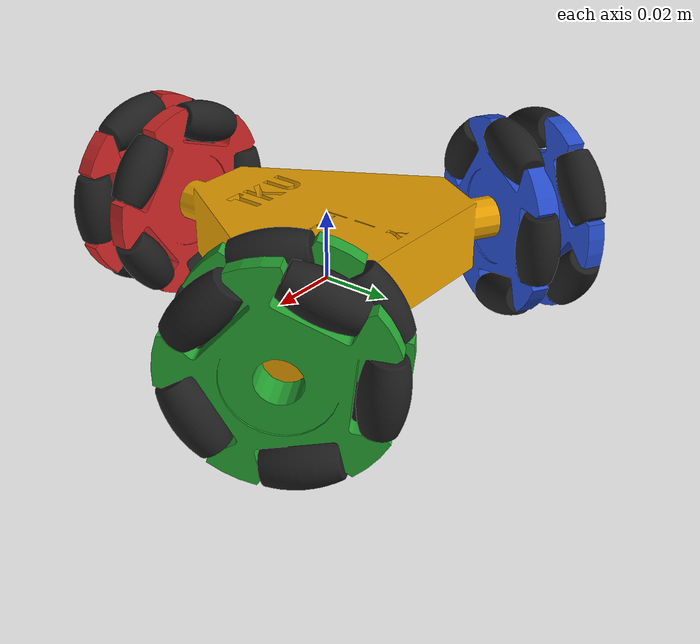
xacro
<?xml version="1.0" encoding="utf-8"?>
<robot name="omni3robot" xmlns:xacro="http://www.ros.org/wiki/xacro">
  <xacro:arg name="pkg_path" default=""/>
  <xacro:include filename="description.gazebo"/>
  <xacro:include filename="controller.gazebo"/>

  <xacro:property name="base_mass" value="0.2203"/>
  <xacro:property name="hub_mass" value="0.0579"/>
  <xacro:property name="roller_mass" value="0.0023"/>

  <link name="base_link">
    <inertial>
      <origin xyz="-2.60873786585806E-05 0.000243250065461549 0.00991609422071794" rpy="0 0 0" />
      <mass value="${base_mass}" />
      <inertia
      ixx="9.60338008936991E-05" ixy="6.90711247235453E-08" ixz="2.92326723956294E-08"
      iyy="9.73351427819623E-05" iyz="-2.72559942630336E-07"
      izz="0.0001795709713681" />
    </inertial>
    <visual>
      <origin xyz="0 0 0" rpy="0 0 0" />
      <geometry>
        <mesh filename="package://$(arg pkg_path)/meshes/base_link.STL" />
      </geometry>
    </visual>
    <collision>
      <origin xyz="0 0 0" rpy="0 0 0" />
      <geometry>
        <mesh filename="package://$(arg pkg_path)/meshes/base_link.STL" />
      </geometry>
    </collision>
  </link>
  <link name="back_hub_link">
    <inertial>
      <origin xyz="2.56280149801462E-05 8.27907396198074E-05 6.93889390390723E-18" rpy="0 0 0" />
      <mass value="${hub_mass}" />
      <inertia
      ixx="6.84765795190242E-06" ixy="2.68210543382495E-08" ixz="-1.90755783989393E-09"
      iyy="6.92600027574926E-06" iyz="5.90487790310419E-10"
      izz="1.31112018830395E-05" />
    </inertial>
    <visual>
      <origin xyz="0 0 0" rpy="0 0 0" />
      <geometry>
        <mesh filename="package://$(arg pkg_path)/meshes/back_hub_link.STL" />
      </geometry>
    </visual>
    <collision>
      <origin xyz="0 0 0" rpy="0 0 0" />
      <geometry>
        <mesh filename="package://$(arg pkg_path)/meshes/back_hub_link.STL" />
      </geometry>
    </collision>
  </link>
  <joint name="back_hub_joint" type="continuous">
    <origin xyz="0 -0.060414518843274 0.01" rpy="1.5707963267949 -0.342794523761895 0" />
    <parent link="base_link" />
    <child link="back_hub_link" />
    <axis xyz="0 0 1" />
  </joint>
  <link name="back_roller_link_1">
    <inertial>
      <origin xyz="0 -2.08166817117217E-17 8.41340885848751E-17" rpy="0 0 0" />
      <mass value="${roller_mass}" />
      <inertia
      ixx="8.41931982734933E-08" ixy="2.06795153138257E-25" ixz="1.77456090786767E-23"
      iyy="8.41931982734933E-08" iyz="8.27180612553028E-25"
      izz="3.69026890905172E-08" />
    </inertial>
    <visual>
      <origin xyz="0 0 0" rpy="0 0 0" />
      <geometry>
        <mesh filename="package://$(arg pkg_path)/meshes/back_roller_link_1.STL" />
      </geometry>
    </visual>
    <collision>
      <origin xyz="0 0 0" rpy="0 0 0" />
      <geometry>
        <mesh filename="package://$(arg pkg_path)/meshes/back_roller_link_1.STL" />
      </geometry>
    </collision>
  </link>
  <joint name="back_roller_joint_1" type="continuous">
    <origin xyz="0 -0.0233534863832243 0.00749999999999999" rpy="1.57079632679492 1.55729200470626 -1.57079632679487" />
    <parent link="back_hub_link" />
    <child link="back_roller_link_1" />
    <axis xyz="0 0 1" />
  </joint>
  <link name="back_roller_link_2">
    <inertial>
      <origin xyz="0 0 8.5868812060852E-17" rpy="0 0 0" />
      <mass value="${roller_mass}" />
      <inertia
      ixx="8.41931982734976E-08" ixy="-7.10858338912758E-26" ixz="1.15805285757424E-23"
      iyy="8.41931982734976E-08" iyz="9.06021264686988E-24"
      izz="3.69026890905251E-08" />
    </inertial>
    <visual>
      <origin xyz="0 0 0" rpy="0 0 0" />
      <geometry>
        <mesh filename="package://$(arg pkg_path)/meshes/back_roller_link_2.STL" />
      </geometry>
    </visual>
    <collision>
      <origin xyz="0 0 0" rpy="0 0 0" />
      <geometry>
        <mesh filename="package://$(arg pkg_path)/meshes/back_roller_link_2.STL" />
      </geometry>
    </collision>
  </link>
  <joint name="back_roller_joint_2" type="continuous">
    <origin xyz="-0.022000325895883 -0.00783396366639405 0.00749999999999999" rpy="1.5707963267949 -0.00341148273627483 -2.79950812019889" />
    <parent link="back_hub_link" />
    <child link="back_roller_link_2" />
    <axis xyz="0 0 1" />
  </joint>
  <link name="back_roller_link_3">
    <inertial>
      <origin xyz="6.93889390390723E-18 -1.38777878078145E-17 8.32667268468867E-17" rpy="0 0 0" />
      <mass value="${roller_mass}" />
      <inertia
      ixx="8.4193198273496E-08" ixy="1.24077091882954E-24" ixz="-6.61744490042422E-24"
      iyy="8.4193198273496E-08" iyz="-1.17873237288806E-23"
      izz="3.69026890905218E-08" />
    </inertial>
    <visual>
      <origin xyz="0 0 0" rpy="0 0 0" />
      <geometry>
        <mesh filename="package://$(arg pkg_path)/meshes/back_roller_link_3.STL" />
      </geometry>
    </visual>
    <collision>
      <origin xyz="0 0 0" rpy="0 0 0" />
      <geometry>
        <mesh filename="package://$(arg pkg_path)/meshes/back_roller_link_3.STL" />
      </geometry>
    </collision>
  </link>
  <joint name="back_roller_joint_3" type="continuous">
    <origin xyz="-0.0141194971962481 0.0186017505944087 0.00749999999999999" rpy="1.5707963267949 -0.133997952555445 2.22005880853679" />
    <parent link="back_hub_link" />
    <child link="back_roller_link_3" />
    <axis xyz="0 0 1" />
  </joint>
  <link name="back_roller_link_4">
    <inertial>
      <origin xyz="0 -2.77555756156289E-17 8.5868812060852E-17" rpy="0 0 0" />
      <mass value="${roller_mass}" />
      <inertia
      ixx="8.41931982734932E-08" ixy="4.13590306276514E-25" ixz="2.31610571514848E-23"
      iyy="8.41931982734932E-08" iyz="-1.47341546611008E-23"
      izz="3.69026890905172E-08" />
    </inertial>
    <visual>
      <origin xyz="0 0 0" rpy="0 0 0" />
      <geometry>
        <mesh filename="package://$(arg pkg_path)/meshes/back_roller_link_4.STL" />
      </geometry>
    </visual>
    <collision>
      <origin xyz="0 0 0" rpy="0 0 0" />
      <geometry>
        <mesh filename="package://$(arg pkg_path)/meshes/back_roller_link_4.STL" />
      </geometry>
    </collision>
  </link>
  <joint name="back_roller_joint_4" type="continuous">
    <origin xyz="0.0134617042465216 0.0190831822563907 0.00750000000000001" rpy="1.5707963267949 -0.0704622970109889 0.956440430092898" />
    <parent link="back_hub_link" />
    <child link="back_roller_link_4" />
    <axis xyz="0 0 1" />
  </joint>
  <link name="back_roller_link_5">
    <inertial>
      <origin xyz="0 0 8.67361737988404E-17" rpy="0 0 0" />
      <mass value="${roller_mass}" />
      <inertia
      ixx="8.41931982734933E-08" ixy="-2.66652656448979E-24" ixz="1.39586728368323E-23"
      iyy="8.41931982734933E-08" iyz="-7.3024538451947E-25"
      izz="3.69026890905172E-08" />
    </inertial>
    <visual>
      <origin xyz="0 0 0" rpy="0 0 0" />
      <geometry>
        <mesh filename="package://$(arg pkg_path)/meshes/back_roller_link_5.STL" />
      </geometry>
    </visual>
    <collision>
      <origin xyz="0 0 0" rpy="0 0 0" />
      <geometry>
        <mesh filename="package://$(arg pkg_path)/meshes/back_roller_link_5.STL" />
      </geometry>
    </collision>
  </link>
  <joint name="back_roller_joint_5" type="continuous">
    <origin xyz="0.0222603252809191 -0.00706139112633746 0.00750000000000001" rpy="1.5707963267949 -0.0690979686040568 -0.307177948350999" />
    <parent link="back_hub_link" />
    <child link="back_roller_link_5" />
    <axis xyz="0 0 1" />
  </joint>
  <link name="back_roller_link_6">
    <inertial>
      <origin xyz="5.20417042793042E-18 0 8.8037216405823E-17" rpy="0 0 0" />
      <mass value="${roller_mass}" />
      <inertia
      ixx="8.41931982734933E-08" ixy="8.27180612553028E-25" ixz="1.57164316385075E-23"
      iyy="8.41931982734933E-08" iyz="-9.69352280335579E-24"
      izz="3.69026890905172E-08" />
    </inertial>
    <visual>
      <origin xyz="0 0 0" rpy="0 0 0" />
      <geometry>
        <mesh filename="package://$(arg pkg_path)/meshes/back_roller_link_6.STL" />
      </geometry>
    </visual>
    <collision>
      <origin xyz="0 0 0" rpy="0 0 0" />
      <geometry>
        <mesh filename="package://$(arg pkg_path)/meshes/back_roller_link_6.STL" />
      </geometry>
    </collision>
  </link>
  <joint name="back_roller_joint_6" type="continuous">
    <origin xyz="-0.0131939492214551 -0.0192692768466569 -0.0075" rpy="1.5707963267949 0.0510141821619564 -2.17118958948093" />
    <parent link="back_hub_link" />
    <child link="back_roller_link_6" />
    <axis xyz="0 0 1" />
  </joint>
  <link name="back_roller_link_7">
    <inertial>
      <origin xyz="6.93889390390723E-18 0 7.80625564189563E-17" rpy="0 0 0" />
      <mass value="${roller_mass}" />
      <inertia
      ixx="8.41931982734933E-08" ixy="4.87907314435575E-25" ixz="1.31314922242793E-23"
      iyy="8.41931982734933E-08" iyz="-2.19719850209398E-24"
      izz="3.69026890905172E-08" />
    </inertial>
    <visual>
      <origin xyz="0 0 0" rpy="0 0 0" />
      <geometry>
        <mesh filename="package://$(arg pkg_path)/meshes/back_roller_link_7.STL" />
      </geometry>
    </visual>
    <collision>
      <origin xyz="0 0 0" rpy="0 0 0" />
      <geometry>
        <mesh filename="package://$(arg pkg_path)/meshes/back_roller_link_7.STL" />
      </geometry>
    </collision>
  </link>
  <joint name="back_roller_joint_7" type="continuous">
    <origin xyz="-0.0223567478500103 0.00674990013426135 -0.0075" rpy="-1.5707963267949 0.189803894702825 -0.293215314335038" />
    <parent link="back_hub_link" />
    <child link="back_roller_link_7" />
    <axis xyz="0 0 1" />
  </joint>
  <link name="back_roller_link_8">
    <inertial>
      <origin xyz="6.93889390390723E-18 0 -8.50014503228635E-17" rpy="0 0 0" />
      <mass value="${roller_mass}" />
      <inertia
      ixx="8.41931982734933E-08" ixy="-1.65436122510606E-24" ixz="5.16987882845642E-24"
      iyy="8.41931982734933E-08" iyz="-2.39882377640378E-23"
      izz="3.69026890905172E-08" />
    </inertial>
    <visual>
      <origin xyz="0 0 0" rpy="0 0 0" />
      <geometry>
        <mesh filename="package://$(arg pkg_path)/meshes/back_roller_link_8.STL" />
      </geometry>
    </visual>
    <collision>
      <origin xyz="0 0 0" rpy="0 0 0" />
      <geometry>
        <mesh filename="package://$(arg pkg_path)/meshes/back_roller_link_8.STL" />
      </geometry>
    </collision>
  </link>
  <joint name="back_roller_joint_8" type="continuous">
    <origin xyz="-0.000326065588430512 0.0233512099790029 -0.00750000000000001" rpy="1.5707963267949 1.32163185520065 1.58475896081086" />
    <parent link="back_hub_link" />
    <child link="back_roller_link_8" />
    <axis xyz="0 0 1" />
  </joint>
  <link name="back_roller_link_9">
    <inertial>
      <origin xyz="0 0 8.84708972748172E-17" rpy="0 0 0" />
      <mass value="${roller_mass}" />
      <inertia
      ixx="8.41931982734928E-08" ixy="-4.13590306276514E-25" ixz="1.81979734761666E-23"
      iyy="8.41931982734929E-08" iyz="-4.96308367531817E-24"
      izz="3.69026890905164E-08" />
    </inertial>
    <visual>
      <origin xyz="0 0 0" rpy="0 0 0" />
      <geometry>
        <mesh filename="package://$(arg pkg_path)/meshes/back_roller_link_9.STL" />
      </geometry>
    </visual>
    <collision>
      <origin xyz="0 0 0" rpy="0 0 0" />
      <geometry>
        <mesh filename="package://$(arg pkg_path)/meshes/back_roller_link_9.STL" />
      </geometry>
    </collision>
  </link>
  <joint name="back_roller_joint_9" type="continuous">
    <origin xyz="0.0221595630173079 0.00737150548622212 -0.0075" rpy="-1.5707963267949 -0.214706325291427 -2.82045207122283" />
    <parent link="back_hub_link" />
    <child link="back_roller_link_9" />
    <axis xyz="0 0 1" />
  </joint>
  <link name="back_roller_link_10">
    <inertial>
      <origin xyz="0 -1.38777878078145E-17 8.67361737988404E-17" rpy="0 0 0" />
      <mass value="${roller_mass}" />
      <inertia
      ixx="8.41931982734964E-08" ixy="-1.24077091882954E-24" ixz="1.65436122510606E-24"
      iyy="8.41931982734964E-08" iyz="-4.13590306276514E-24"
      izz="3.69026890905227E-08" />
    </inertial>
    <visual>
      <origin xyz="0 0 0" rpy="0 0 0" />
      <geometry>
        <mesh filename="package://$(arg pkg_path)/meshes/back_roller_link_10.STL" />
      </geometry>
    </visual>
    <collision>
      <origin xyz="0 0 0" rpy="0 0 0" />
      <geometry>
        <mesh filename="package://$(arg pkg_path)/meshes/back_roller_link_10.STL" />
      </geometry>
    </collision>
  </link>
  <joint name="back_roller_joint_10" type="continuous">
    <origin xyz="0.0137268348856724 -0.0188933673619324 -0.00750000000000001" rpy="-1.5707963267949 0.214455135869957 2.19911485751286" />
    <parent link="back_hub_link" />
    <child link="back_roller_link_10" />
    <axis xyz="0 0 1" />
  </joint>
  <link name="left_hub_link">
    <inertial>
      <origin xyz="8.27907396198134E-05 2.56280149801419E-05 6.93889390390723E-18" rpy="0 0 0" />
      <mass value="${hub_mass}" />
      <inertia
      ixx="6.92600027574926E-06" ixy="2.68210543382497E-08" ixz="-5.90487790310826E-10"
      iyy="6.84765795190242E-06" iyz="1.9075578398941E-09"
      izz="1.31112018830395E-05" />
    </inertial>
    <visual>
      <origin xyz="0 0 0" rpy="0 0 0" />
      <geometry>
        <mesh filename="package://$(arg pkg_path)/meshes/left_hub_link.STL" />
      </geometry>
    </visual>
    <collision>
      <origin xyz="0 0 0" rpy="0 0 0" />
      <geometry>
        <mesh filename="package://$(arg pkg_path)/meshes/left_hub_link.STL" />
      </geometry>
    </collision>
  </link>
  <joint name="left_hub_joint" type="continuous">
    <origin xyz="-0.0523205080756892 0.0302072594216366 0.01" rpy="-1.5707963267949 -0.612948648771079 1.04719755119661" />
    <parent link="base_link" />
    <child link="left_hub_link" />
    <axis xyz="0 0 1" />
  </joint>
  <link name="left_roller_link_1">
    <inertial>
      <origin xyz="-4.38538094726937E-15 2.8943861196673E-14 -1.66533453693773E-16" rpy="0 0 0" />
      <mass value="${roller_mass}" />
      <inertia
      ixx="8.41931982734932E-08" ixy="8.16840854896115E-24" ixz="1.88054342385102E-23"
      iyy="8.41931982734933E-08" iyz="3.77401154477319E-24"
      izz="3.69026890905172E-08" />
    </inertial>
    <visual>
      <origin xyz="0 0 0" rpy="0 0 0" />
      <geometry>
        <mesh filename="package://$(arg pkg_path)/meshes/left_roller_link_1.STL" />
      </geometry>
    </visual>
    <collision>
      <origin xyz="0 0 0" rpy="0 0 0" />
      <geometry>
        <mesh filename="package://$(arg pkg_path)/meshes/left_roller_link_1.STL" />
      </geometry>
    </collision>
  </link>
  <joint name="left_roller_joint_1" type="continuous">
    <origin xyz="-0.0192692768466812 -0.0131939492214714 0.00749999999999881" rpy="1.5707963267949 -1.38048597489272 -2.54119939090376" />
    <parent link="left_hub_link" />
    <child link="left_roller_link_1" />
    <axis xyz="0 0 1" />
  </joint>
  <link name="left_roller_link_2">
    <inertial>
      <origin xyz="5.70377078901174E-15 -8.02136135291676E-15 2.50381312905112E-14" rpy="0 0 0" />
      <mass value="${roller_mass}" />
      <inertia
      ixx="8.41931982734928E-08" ixy="1.32348898008484E-23" ixz="2.56425989891439E-23"
      iyy="8.41931982734929E-08" iyz="4.13590306276514E-24"
      izz="3.69026890905164E-08" />
    </inertial>
    <visual>
      <origin xyz="0 0 0" rpy="0 0 0" />
      <geometry>
        <mesh filename="package://$(arg pkg_path)/meshes/left_roller_link_2.STL" />
      </geometry>
    </visual>
    <collision>
      <origin xyz="0 0 0" rpy="0 0 0" />
      <geometry>
        <mesh filename="package://$(arg pkg_path)/meshes/left_roller_link_2.STL" />
      </geometry>
    </collision>
  </link>
  <joint name="left_roller_joint_2" type="continuous">
    <origin xyz="-0.018893367361955 0.013726834885658 0.00749999999999976" rpy="-1.5707963267949 0.929944260398238 -0.62831853071796" />
    <parent link="left_hub_link" />
    <child link="left_roller_link_2" />
    <axis xyz="0 0 1" />
  </joint>
  <link name="left_roller_link_3">
    <inertial>
      <origin xyz="2.08895400977127E-14 7.84095011141517E-15 1.64191577001205E-14" rpy="0 0 0" />
      <mass value="${roller_mass}" />
      <inertia
      ixx="8.41931982734978E-08" ixy="-2.48154183765908E-24" ixz="2.48154183765908E-23"
      iyy="8.41931982734977E-08" iyz="3.30872245021211E-24"
      izz="3.69026890905254E-08" />
    </inertial>
    <visual>
      <origin xyz="0 0 0" rpy="0 0 0" />
      <geometry>
        <mesh filename="package://$(arg pkg_path)/meshes/left_roller_link_3.STL" />
      </geometry>
    </visual>
    <collision>
      <origin xyz="0 0 0" rpy="0 0 0" />
      <geometry>
        <mesh filename="package://$(arg pkg_path)/meshes/left_roller_link_3.STL" />
      </geometry>
    </collision>
  </link>
  <joint name="left_roller_joint_3" type="continuous">
    <origin xyz="0.00737150548619958 0.0221595630172919 0.0075000000000003" rpy="1.5707963267949 0.373417386311186 1.24965574442794" />
    <parent link="left_hub_link" />
    <child link="left_roller_link_3" />
    <axis xyz="0 0 1" />
  </joint>
  <link name="left_roller_link_4">
    <inertial>
      <origin xyz="1.74721348500384E-14 -1.60912949631609E-14 -1.50695428358105E-14" rpy="0 0 0" />
      <mass value="${roller_mass}" />
      <inertia
      ixx="8.41931982734926E-08" ixy="-4.13590306276514E-24" ixz="2.8951321439356E-23"
      iyy="8.41931982734926E-08" iyz="-5.79026428787119E-24"
      izz="3.69026890905159E-08" />
    </inertial>
    <visual>
      <origin xyz="0 0 0" rpy="0 0 0" />
      <geometry>
        <mesh filename="package://$(arg pkg_path)/meshes/left_roller_link_4.STL" />
      </geometry>
    </visual>
    <collision>
      <origin xyz="0 0 0" rpy="0 0 0" />
      <geometry>
        <mesh filename="package://$(arg pkg_path)/meshes/left_roller_link_4.STL" />
      </geometry>
    </collision>
  </link>
  <joint name="left_roller_joint_4" type="continuous">
    <origin xyz="0.0233512099789789 -0.000326065588445341 0.00750000000000053" rpy="1.5707963267949 -0.721769196294574 -0.0139626340159606" />
    <parent link="left_hub_link" />
    <child link="left_roller_link_4" />
    <axis xyz="0 0 1" />
  </joint>
  <link name="left_roller_link_5">
    <inertial>
      <origin xyz="-4.02455846426619E-16 -8.12544476147536E-15 -2.53234933023094E-14" rpy="0 0 0" />
      <mass value="${roller_mass}" />
      <inertia
      ixx="8.41931982734987E-08" ixy="2.06795153138257E-25" ixz="9.15068552636787E-24"
      iyy="8.41931982734987E-08" iyz="1.73707928636136E-23"
      izz="3.69026890905274E-08" />
    </inertial>
    <visual>
      <origin xyz="0 0 0" rpy="0 0 0" />
      <geometry>
        <mesh filename="package://$(arg pkg_path)/meshes/left_roller_link_5.STL" />
      </geometry>
    </visual>
    <collision>
      <origin xyz="0 0 0" rpy="0 0 0" />
      <geometry>
        <mesh filename="package://$(arg pkg_path)/meshes/left_roller_link_5.STL" />
      </geometry>
    </collision>
  </link>
  <joint name="left_roller_joint_5" type="continuous">
    <origin xyz="0.00674990013423936 -0.0223567478500255 0.00749999999999985" rpy="1.57079632679489 1.54234688429856 -1.27758101245986" />
    <parent link="left_hub_link" />
    <child link="left_roller_link_5" />
    <axis xyz="0 0 1" />
  </joint>
  <link name="left_roller_link_6">
    <inertial>
      <origin xyz="-7.82707232360735E-15 2.23467078175332E-14 1.49914802793916E-14" rpy="0 0 0" />
      <mass value="${roller_mass}" />
      <inertia
      ixx="8.41931982734932E-08" ixy="-8.27180612553028E-25" ixz="1.3648480107125E-23"
      iyy="8.41931982734932E-08" iyz="1.65436122510606E-24"
      izz="3.69026890905172E-08" />
    </inertial>
    <visual>
      <origin xyz="0 0 0" rpy="0 0 0" />
      <geometry>
        <mesh filename="package://$(arg pkg_path)/meshes/left_roller_link_6.STL" />
      </geometry>
    </visual>
    <collision>
      <origin xyz="0 0 0" rpy="0 0 0" />
      <geometry>
        <mesh filename="package://$(arg pkg_path)/meshes/left_roller_link_6.STL" />
      </geometry>
    </collision>
  </link>
  <joint name="left_roller_joint_6" type="continuous">
    <origin xyz="-0.0233534863832479 0 -0.00750000000000082" rpy="1.5707963267949 -1.19945954084603 3.14159265358979" />
    <parent link="left_hub_link" />
    <child link="left_roller_link_6" />
    <axis xyz="0 0 1" />
  </joint>
  <link name="left_roller_link_7">
    <inertial>
      <origin xyz="1.38777878078145E-17 -3.46944695195361E-18 7.97972798949331E-17" rpy="0 0 0" />
      <mass value="${roller_mass}" />
      <inertia
        ixx="8.41931982734977E-08" ixy="2.06795153138257E-24" ixz="1.0998917207541E-23"
        iyy="8.41931982734977E-08" iyz="-8.27180612553028E-24"
        izz="3.69026890905254E-08" />
    </inertial>
    <visual>
      <origin xyz="0 0 0" rpy="0 0 0" />
      <geometry>
        <mesh filename="package://$(arg pkg_path)/meshes/left_roller_link_7.STL" />
      </geometry>
    </visual>
    <collision>
      <origin xyz="0 0 0" rpy="0 0 0" />
      <geometry>
        <mesh filename="package://$(arg pkg_path)/meshes/left_roller_link_7.STL" />
      </geometry>
    </collision>
  </link>
  <joint name="left_roller_joint_7" type="continuous">
    <origin xyz="-0.00706139112633746 0.0222603252809191 -0.00750000000000001" rpy="-1.57079632679487 -1.55161891074618 -1.26361837844392" />
    <parent link="left_hub_link" />
    <child link="left_roller_link_7" />
    <axis xyz="0 0 1" />
  </joint>
  <link name="left_roller_link_8">
    <inertial>
      <origin xyz="0 -6.93889390390723E-18 8.50014503228635E-17" rpy="0 0 0" />
      <mass value="${roller_mass}" />
      <inertia
      ixx="8.41931982734932E-08" ixy="-6.51751831183807E-24" ixz="1.24691014993833E-23"
      iyy="8.41931982734932E-08" iyz="1.83207580983424E-24"
      izz="3.69026890905172E-08" />
    </inertial>
    <visual>
      <origin xyz="0 0 0" rpy="0 0 0" />
      <geometry>
        <mesh filename="package://$(arg pkg_path)/meshes/left_roller_link_8.STL" />
      </geometry>
    </visual>
    <collision>
      <origin xyz="0 0 0" rpy="0 0 0" />
      <geometry>
        <mesh filename="package://$(arg pkg_path)/meshes/left_roller_link_8.STL" />
      </geometry>
    </collision>
  </link>
  <joint name="left_roller_joint_8" type="continuous">
    <origin xyz="0.0190831822563907 0.0134617042465216 -0.00750000000000001" rpy="-1.5707963267949 0.765889797937581 -2.5272367568878" />
    <parent link="left_hub_link" />
    <child link="left_roller_link_8" />
    <axis xyz="0 0 1" />
  </joint>
  <link name="left_roller_link_9">
    <inertial>
      <origin xyz="-3.46944695195361E-18 6.93889390390723E-18 8.32667268468867E-17" rpy="0 0 0" />
      <mass value="${roller_mass}" />
      <inertia
      ixx="8.41931982734977E-08" ixy="3.30872245021211E-24" ixz="1.81979734761666E-23"
      iyy="8.41931982734977E-08" iyz="-1.77843831698901E-23"
      izz="3.69026890905254E-08" />
    </inertial>
    <visual>
      <origin xyz="0 0 0" rpy="0 0 0" />
      <geometry>
        <mesh filename="package://$(arg pkg_path)/meshes/left_roller_link_9.STL" />
      </geometry>
    </visual>
    <collision>
      <origin xyz="0 0 0" rpy="0 0 0" />
      <geometry>
        <mesh filename="package://$(arg pkg_path)/meshes/left_roller_link_9.STL" />
      </geometry>
    </collision>
  </link>
  <joint name="left_roller_joint_9" type="continuous">
    <origin xyz="0.0186017505944087 -0.0141194971962481 -0.0075" rpy="1.5707963267949 0.463259303257962 -0.649262481741898" />
    <parent link="left_hub_link" />
    <child link="left_roller_link_9" />
    <axis xyz="0 0 1" />
  </joint>
  <link name="left_roller_link_10">
    <inertial>
      <origin xyz="-3.46944695195361E-18 6.93889390390723E-18 8.50014503228635E-17" rpy="0 0 0" />
      <mass value="${roller_mass}" />
      <inertia
      ixx="8.41931982734963E-08" ixy="8.27180612553028E-25" ixz="1.15805285757424E-23"
      iyy="8.41931982734964E-08" iyz="8.27180612553028E-25"
      izz="3.69026890905227E-08" />
    </inertial>
    <visual>
      <origin xyz="0 0 0" rpy="0 0 0" />
      <geometry>
        <mesh filename="package://$(arg pkg_path)/meshes/left_roller_link_10.STL" />
      </geometry>
    </visual>
    <collision>
      <origin xyz="0 0 0" rpy="0 0 0" />
      <geometry>
        <mesh filename="package://$(arg pkg_path)/meshes/left_roller_link_10.STL" />
      </geometry>
    </collision>
  </link>
  <joint name="left_roller_joint_10" type="continuous">
    <origin xyz="-0.00783396366639404 -0.022000325895883 -0.00750000000000002" rpy="-1.5707963267949 -0.452282392003353 1.228711793404" />
    <parent link="left_hub_link" />
    <child link="left_roller_link_10" />
    <axis xyz="0 0 1" />
  </joint>
  <link name="right_hub_link">
    <inertial>
      <origin xyz="2.56280149801454E-05 -8.27907396198091E-05 0" rpy="0 0 0" />
      <mass value="${hub_mass}" />
      <inertia
      ixx="6.84765795190243E-06" ixy="-2.68210543382476E-08" ixz="1.90755783989289E-09"
      iyy="6.92600027574927E-06" iyz="5.90487790313911E-10"
      izz="1.31112018830395E-05" />
    </inertial>
    <visual>
      <origin xyz="0 0 0" rpy="0 0 0" />
      <geometry>
        <mesh filename="package://$(arg pkg_path)/meshes/right_hub_link.STL" />
      </geometry>
    </visual>
    <collision>
      <origin xyz="0 0 0" rpy="0 0 0" />
      <geometry>
        <mesh filename="package://$(arg pkg_path)/meshes/right_hub_link.STL" />
      </geometry>
    </collision>
  </link>
  <joint name="right_hub_joint" type="continuous">
    <origin xyz="0.0523205080756892 0.0302072594216368 0.01" rpy="1.5707963267949 1.0471975511966 2.09439510239319" />
    <parent link="base_link" />
    <child link="right_hub_link" />
    <axis xyz="0 0 1" />
  </joint>
  <link name="right_roller_link_1">
    <inertial>
      <origin xyz="-1.38777878078145E-16 6.31439345255558E-16 1.57859836313889E-16" rpy="0 0 0" />
      <mass value="${roller_mass}" />
      <inertia
      ixx="8.41931982734932E-08" ixy="-8.96973976737189E-24" ixz="1.55096364853693E-23"
      iyy="8.41931982734932E-08" iyz="-6.61744490042422E-24"
      izz="3.69026890905172E-08" />
    </inertial>
    <visual>
      <origin xyz="0 0 0" rpy="0 0 0" />
      <geometry>
        <mesh filename="package://$(arg pkg_path)/meshes/right_roller_link_1.STL" />
      </geometry>
    </visual>
    <collision>
      <origin xyz="0 0 0" rpy="0 0 0" />
      <geometry>
        <mesh filename="package://$(arg pkg_path)/meshes/right_roller_link_1.STL" />
      </geometry>
    </collision>
  </link>
  <joint name="right_roller_joint_1" type="continuous">
    <origin xyz="0.0137268348856724 0.0188933673619324 0.00750000000000001" rpy="-1.5707963267949 -1.40882641561372 0.942477796076937" />
    <parent link="right_hub_link" />
    <child link="right_roller_link_1" />
    <axis xyz="0 0 1" />
  </joint>
  <link name="right_roller_link_2">
    <inertial>
      <origin xyz="5.45397060847108E-15 -3.49026363366534E-15 3.17714604625152E-14" rpy="0 0 0" />
      <mass value="${roller_mass}" />
      <inertia
      ixx="8.41931982734995E-08" ixy="-6.61744490042422E-24" ixz="2.48154183765908E-24"
      iyy="8.41931982734995E-08" iyz="4.96308367531817E-24"
      izz="3.6902689090529E-08" />
    </inertial>
    <visual>
      <origin xyz="0 0 0" rpy="0 0 0" />
      <geometry>
        <mesh filename="package://$(arg pkg_path)/meshes/right_roller_link_2.STL" />
      </geometry>
    </visual>
    <collision>
      <origin xyz="0 0 0" rpy="0 0 0" />
      <geometry>
        <mesh filename="package://$(arg pkg_path)/meshes/right_roller_link_2.STL" />
      </geometry>
    </collision>
  </link>
  <joint name="right_roller_joint_2" type="continuous">
    <origin xyz="-0.0131939492214284 0.0192692768466749 0.00749999999999344" rpy="-1.57079632679488 -0.923062692335552 2.17118958948092" />
    <parent link="right_hub_link" />
    <child link="right_roller_link_2" />
    <axis xyz="0 0 1" />
  </joint>
  <link name="right_roller_link_3">
    <inertial>
      <origin xyz="6.93889390390723E-18 -1.38777878078145E-17 8.67361737988404E-17" rpy="0 0 0" />
      <mass value="${roller_mass}" />
      <inertia
      ixx="8.41931982734975E-08" ixy="1.02363600803437E-23" ixz="1.65436122510606E-23"
      iyy="8.41931982734975E-08" iyz="2.48154183765908E-24"
      izz="3.69026890905251E-08" />
    </inertial>
    <visual>
      <origin xyz="0 0 0" rpy="0 0 0" />
      <geometry>
        <mesh filename="package://$(arg pkg_path)/meshes/right_roller_link_3.STL" />
      </geometry>
    </visual>
    <collision>
      <origin xyz="0 0 0" rpy="0 0 0" />
      <geometry>
        <mesh filename="package://$(arg pkg_path)/meshes/right_roller_link_3.STL" />
      </geometry>
    </collision>
  </link>
  <joint name="right_roller_joint_3" type="continuous">
    <origin xyz="-0.0223567478500099 -0.00674990013426118 0.00750000000000021" rpy="-1.5707963267949 0.026723375910807 -2.84837733925476" />
    <parent link="right_hub_link" />
    <child link="right_roller_link_3" />
    <axis xyz="0 0 1" />
  </joint>
  <link name="right_roller_link_4">
    <inertial>
      <origin xyz="-2.08166817117217E-17 6.93889390390723E-18 9.0205620750794E-17" rpy="0 0 0" />
      <mass value="${roller_mass}" />
      <inertia
      ixx="8.41931982734893E-08" ixy="4.96308367531817E-24" ixz="1.32348898008484E-23"
      iyy="8.41931982734893E-08" iyz="2.48154183765908E-24"
      izz="3.69026890905101E-08" />
    </inertial>
    <visual>
      <origin xyz="0 0 0" rpy="0 0 0" />
      <geometry>
        <mesh filename="package://$(arg pkg_path)/meshes/right_roller_link_4.STL" />
      </geometry>
    </visual>
    <collision>
      <origin xyz="0 0 0" rpy="0 0 0" />
      <geometry>
        <mesh filename="package://$(arg pkg_path)/meshes/right_roller_link_4.STL" />
      </geometry>
    </collision>
  </link>
  <joint name="right_roller_joint_4" type="continuous">
    <origin xyz="-0.00032606558843048 -0.0233512099790023 0.00750000000000019" rpy="1.5707963267949 0.763972494306282 1.55683369277894" />
    <parent link="right_hub_link" />
    <child link="right_roller_link_4" />
    <axis xyz="0 0 1" />
  </joint>
  <link name="right_roller_link_5">
    <inertial>
      <origin xyz="6.09928774153445E-15 8.67361737988404E-16 -2.62116717220096E-14" rpy="0 0 0" />
      <mass value="${roller_mass}" />
      <inertia
      ixx="8.4193198273491E-08" ixy="9.92616735063633E-24" ixz="3.14328632770151E-23"
      iyy="8.4193198273491E-08" iyz="-3.72231275648862E-24"
      izz="3.69026890905126E-08" />
    </inertial>
    <visual>
      <origin xyz="0 0 0" rpy="0 0 0" />
      <geometry>
        <mesh filename="package://$(arg pkg_path)/meshes/right_roller_link_5.STL" />
      </geometry>
    </visual>
    <collision>
      <origin xyz="0 0 0" rpy="0 0 0" />
      <geometry>
        <mesh filename="package://$(arg pkg_path)/meshes/right_roller_link_5.STL" />
      </geometry>
    </collision>
  </link>
  <joint name="right_roller_joint_5" type="continuous">
    <origin xyz="0.0221595630173217 -0.00737150548619833 0.00750000000000275" rpy="1.57079632679491 0.61369778053926 2.82045207122284" />
    <parent link="right_hub_link" />
    <child link="right_roller_link_5" />
    <axis xyz="0 0 1" />
  </joint>
  <link name="right_roller_link_6">
    <inertial>
      <origin xyz="1.08593689596148E-14 3.19813620031084E-14 1.24067423001861E-14" rpy="0 0 0" />
      <mass value="${roller_mass}" />
      <inertia
      ixx="8.41931982734964E-08" ixy="5.37667398159468E-24" ixz="-1.65436122510606E-24"
      iyy="8.41931982734964E-08" iyz="7.85821581925376E-24"
      izz="3.69026890905227E-08" />
    </inertial>
    <visual>
      <origin xyz="0 0 0" rpy="0 0 0" />
      <geometry>
        <mesh filename="package://$(arg pkg_path)/meshes/right_roller_link_6.STL" />
      </geometry>
    </visual>
    <collision>
      <origin xyz="0 0 0" rpy="0 0 0" />
      <geometry>
        <mesh filename="package://$(arg pkg_path)/meshes/right_roller_link_6.STL" />
      </geometry>
    </collision>
  </link>
  <joint name="right_roller_joint_6" type="continuous">
    <origin xyz="0 0.0233534863832451 -0.00750000000002719" rpy="1.57079632679489 0.319088525233286 -1.5707963267949" />
    <parent link="right_hub_link" />
    <child link="right_roller_link_6" />
    <axis xyz="0 0 1" />
  </joint>
  <link name="right_roller_link_7">
    <inertial>
      <origin xyz="1.83186799063151E-15 -2.58126853225349E-15 1.14248888127833E-14" rpy="0 0 0" />
      <mass value="${roller_mass}" />
      <inertia
      ixx="8.41931982734904E-08" ixy="3.30872245021211E-24" ixz="1.03397576569128E-23"
      iyy="8.41931982734905E-08" iyz="3.92910790962688E-24"
      izz="3.69026890905117E-08" />
    </inertial>
    <visual>
      <origin xyz="0 0 0" rpy="0 0 0" />
      <geometry>
        <mesh filename="package://$(arg pkg_path)/meshes/right_roller_link_7.STL" />
      </geometry>
    </visual>
    <collision>
      <origin xyz="0 0 0" rpy="0 0 0" />
      <geometry>
        <mesh filename="package://$(arg pkg_path)/meshes/right_roller_link_7.STL" />
      </geometry>
    </collision>
  </link>
  <joint name="right_roller_joint_7" type="continuous">
    <origin xyz="-0.0220003258958767 0.00783396366640432 -0.007500000000002" rpy="-1.57079632679489 0.257880599669227 2.7995081201989" />
    <parent link="right_hub_link" />
    <child link="right_roller_link_7" />
    <axis xyz="0 0 1" />
  </joint>
  <link name="right_roller_link_8">
    <inertial>
      <origin xyz="1.35039548987415E-14 0 1.5560469579512E-15" rpy="0 0 0" />
      <mass value="${roller_mass}" />
      <inertia
      ixx="8.41931982734933E-08" ixy="2.22304789623626E-24" ixz="1.69572025573371E-23"
      iyy="8.41931982734933E-08" iyz="-3.41212002678124E-24"
      izz="3.69026890905172E-08" />
    </inertial>
    <visual>
      <origin xyz="0 0 0" rpy="0 0 0" />
      <geometry>
        <mesh filename="package://$(arg pkg_path)/meshes/right_roller_link_8.STL" />
      </geometry>
    </visual>
    <collision>
      <origin xyz="0 0 0" rpy="0 0 0" />
      <geometry>
        <mesh filename="package://$(arg pkg_path)/meshes/right_roller_link_8.STL" />
      </geometry>
    </collision>
  </link>
  <joint name="right_roller_joint_8" type="continuous">
    <origin xyz="-0.0141194971962415 -0.0186017505943974 -0.00749999999999461" rpy="-1.57079632679489 0.393410975366226 -2.2200588085368" />
    <parent link="right_hub_link" />
    <child link="right_roller_link_8" />
    <axis xyz="0 0 1" />
  </joint>
  <link name="right_roller_link_9">
    <inertial>
      <origin xyz="-1.38777878078145E-17 0 8.50014503228635E-17" rpy="0 0 0" />
      <mass value="${roller_mass}" />
      <inertia
      ixx="8.41931982734934E-08" ixy="-6.61744490042422E-24" ixz="5.79026428787119E-24"
      iyy="8.41931982734934E-08" iyz="-8.27180612553028E-25"
      izz="3.69026890905174E-08" />
    </inertial>
    <visual>
      <origin xyz="0 0 0" rpy="0 0 0" />
      <geometry>
        <mesh filename="package://$(arg pkg_path)/meshes/right_roller_link_9.STL" />
      </geometry>
    </visual>
    <collision>
      <origin xyz="0 0 0" rpy="0 0 0" />
      <geometry>
        <mesh filename="package://$(arg pkg_path)/meshes/right_roller_link_9.STL" />
      </geometry>
    </collision>
  </link>
  <joint name="right_roller_joint_9" type="continuous">
    <origin xyz="0.0134617042465218 -0.0190831822563903 -0.0074999999999999" rpy="1.57079632679491 -0.611824669785827 2.18515222349689" />
    <parent link="right_hub_link" />
    <child link="right_roller_link_9" />
    <axis xyz="0 0 1" />
  </joint>
  <link name="right_roller_link_10">
    <inertial>
      <origin xyz="0 -6.93889390390723E-18 8.32667268468867E-17" rpy="0 0 0" />
      <mass value="${roller_mass}" />
      <inertia
      ixx="8.41931982734928E-08" ixy="-3.51551760335037E-24" ixz="1.65436122510606E-23"
      iyy="8.41931982734929E-08" iyz="-7.49632430126181E-24"
      izz="3.69026890905164E-08" />
    </inertial>
    <visual>
      <origin xyz="0 0 0" rpy="0 0 0" />
      <geometry>
        <mesh filename="package://$(arg pkg_path)/meshes/right_roller_link_10.STL" />
      </geometry>
    </visual>
    <collision>
      <origin xyz="0 0 0" rpy="0 0 0" />
      <geometry>
        <mesh filename="package://$(arg pkg_path)/meshes/right_roller_link_10.STL" />
      </geometry>
    </collision>
  </link>
  <joint name="right_roller_joint_10" type="continuous">
    <origin xyz="0.0222603252809193 0.00706139112633789 -0.00750000000000016" rpy="-1.5707963267949 0.0366359002326294 0.307177948350998" />
    <parent link="right_hub_link" />
    <child link="right_roller_link_10" />
    <axis xyz="0 0 1" />
  </joint>
</robot>
